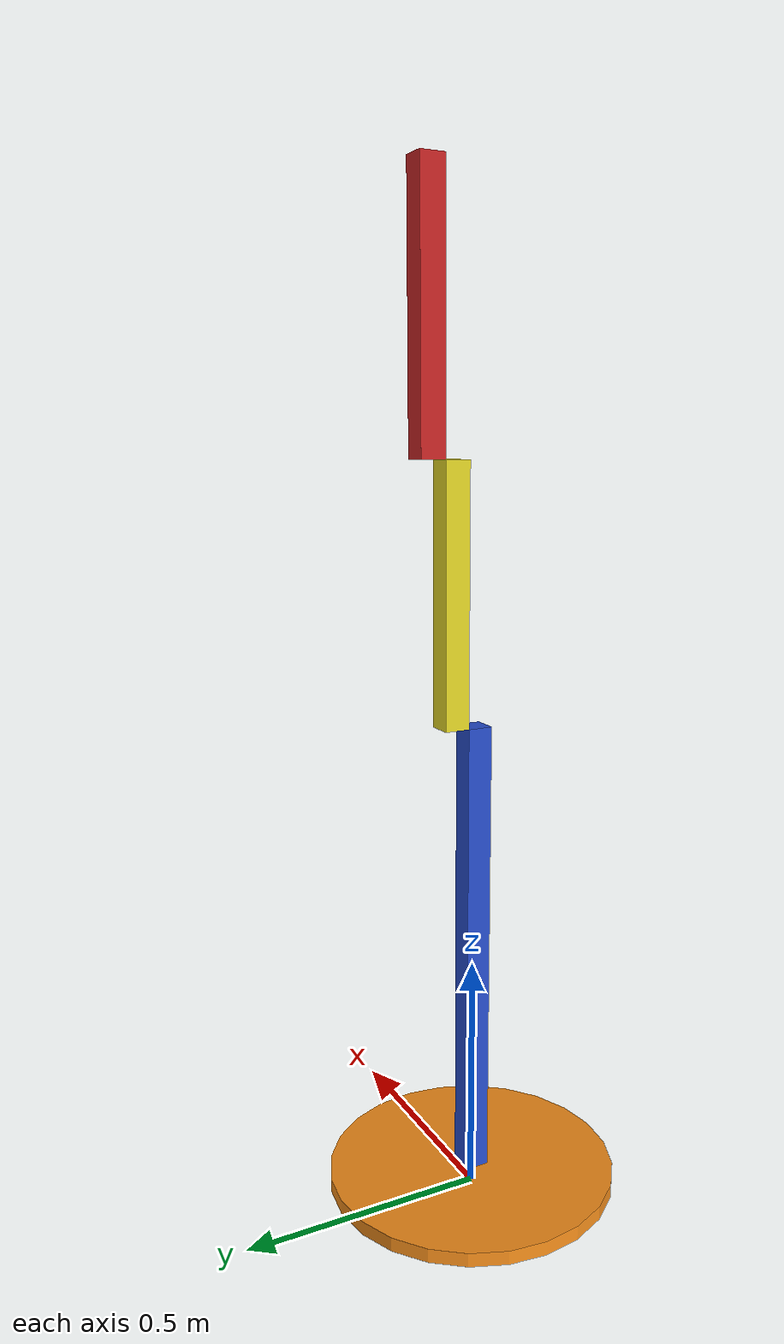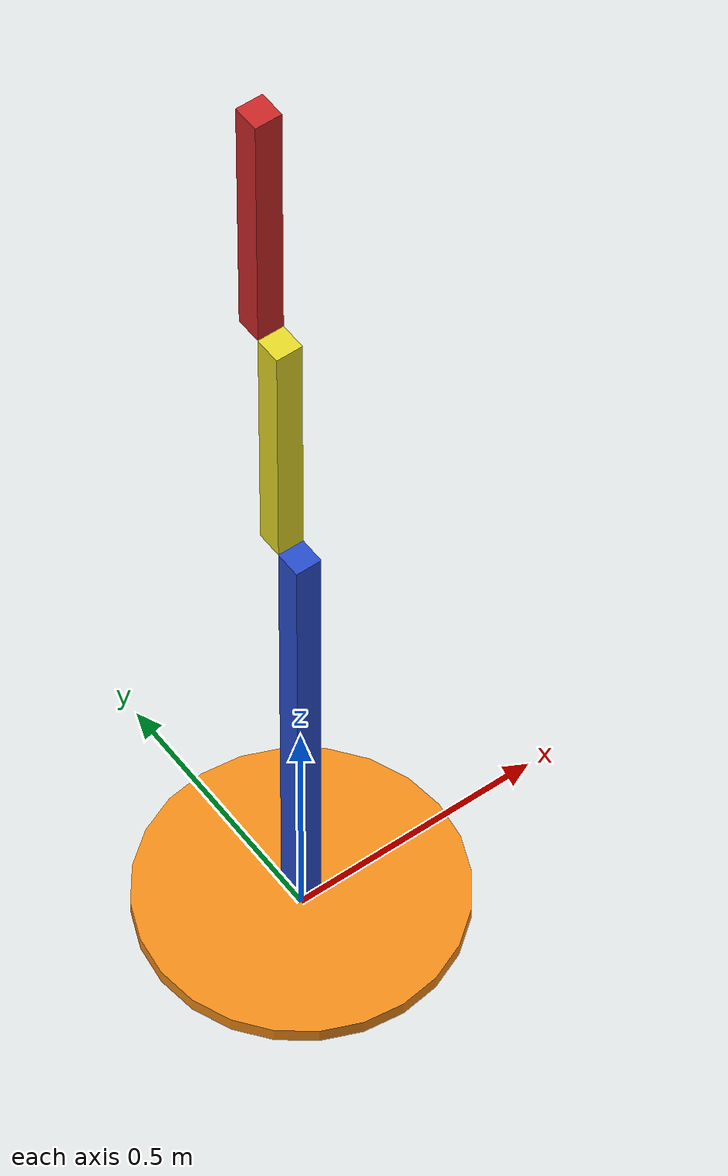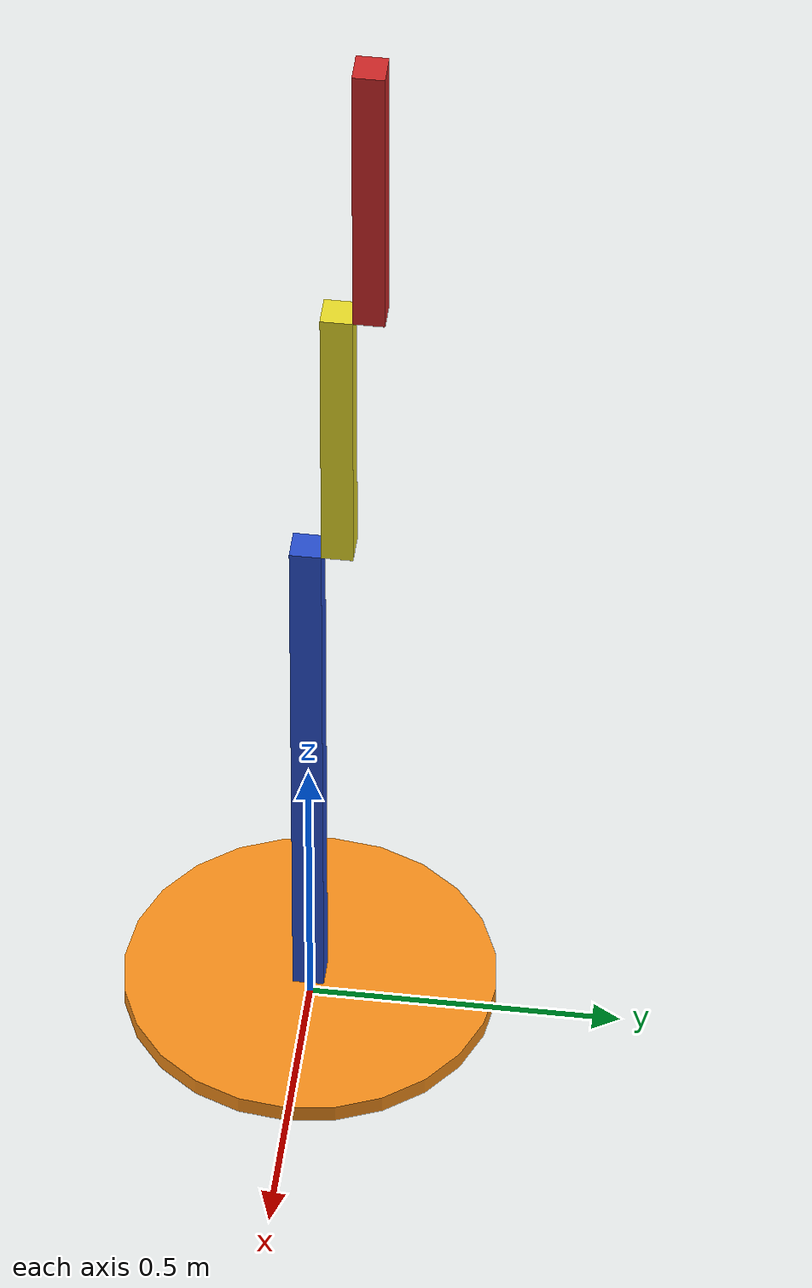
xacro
<?xml version="1.0"?>
<robot name="robotic_arm" xmlns:xacro="http://www.ros.org/wiki/xacro" >

    <xacro:property name="base_width" value="0.05" />
    <xacro:property name="base_length" value="0.05" />
    <xacro:property name="base_heigth" value="1.0" />

    <xacro:property name="cylinder_radius" value="0.3" />
    <xacro:property name="cylinder_length" value="0.03" />

    <xacro:property name="axle_offset" value="0.5" /> <!-- Space between joint and end of beam -->

    <link name = "base_footprint"/>

    <link name="base_link">
        <visual>
            <origin xyz="0 0 0" rpy="0 0 0"/>
            <geometry>
                <box size = "${base_width} ${base_length} ${base_heigth}" />
            </geometry>
            <material name = "navy_blue" />
        </visual>
        <collision>
            <origin xyz = "0 0 0" rpy = "0 0 0" />
            <geometry>
                <box size = "${base_width} ${base_length} ${base_heigth}" />
            </geometry>
        </collision>
        <xacro:box_inertial m = "5.0" l = "${2*base_length}"
                                      w = "${2*base_width}"
                                      h = "${2*base_heigth}"
                                      xyz = "0 0 0"
                                      rpy = "0 0 0" />
    </link>

    <joint name="base_footprint_to_base_joint" type="fixed">
        <parent link="base_footprint"/>
        <child link="base_link"/>
        <origin xyz="0 0 ${base_heigth/2}" />
    </joint>

    <link name="platform">
        <visual>
            <origin xyz="0 0 0" rpy="0 0 0"/>
            <geometry>
                <cylinder radius = "${cylinder_radius}" length = "${cylinder_length}" />
            </geometry>
            <material name = "orange" />
        </visual>
        <collision>
             <origin xyz="0 0 0" rpy="0 0 0"/>
            <geometry>
                <cylinder radius = "${cylinder_radius}" length = "${cylinder_length}"/>
            </geometry>
        </collision>
        <xacro:cylinder_inertial m = "5.0" l = "${cylinder_length}"
                                      r = "${cylinder_radius}"
                                      xyz = "0 0 0"
                                      rpy = "0 0 0" />
    </link>

    <joint name="platform_to_base_joint" type="fixed">
        <parent link="base_footprint"/>
        <child link="platform"/>
        <origin xyz="0 0 ${cylinder_length}" />
    </joint>

    <link name="mid_link">
        <visual>
            <origin xyz="0 0 ${base_heigth/4}" rpy= "0 0 0"/>
            <geometry>
                <box size = "${base_width} ${base_length} ${base_heigth/2}" />
            </geometry>
            <material name = "yellow" />
        </visual>
        <collision>
            <origin xyz = "0 0 ${base_heigth/4}" rpy = "0 0 0" />
            <geometry>
                <box size = "${base_width} ${base_length} ${base_heigth/2}" />
            </geometry>
        </collision>
        <xacro:box_inertial m = "2.0" l = "${base_length}"
                                      w = "${base_width}"
                                      h = "${base_heigth/2}"
                                      xyz = "0 0 0"
                                      rpy = "0 0 ${base_heigth/4}" />
    </link>

    <joint name="base_to_mid_joint" type="revolute">
        <parent link="base_link"/>
        <child link="mid_link"/>
        <origin xyz="0 ${base_width} ${base_heigth - axle_offset}" rpy="0 0 0"/>
        <axis xyz="0 1 0"/>
        <limit effort="100.0" velocity="0.5" lower="-3.14" upper="3.14" />
  </joint>

    <link name="top_link">
        <visual>
            <origin xyz="0 0 ${base_heigth/4}" rpy= "0 0 0"/>
            <geometry>
                <box size = "${base_width} ${base_length} ${base_heigth/2}" />
            </geometry>
            <material name = "red" />
        </visual>
        <collision>
            <origin xyz = "0 0 ${base_heigth/4}" rpy = "0 0 0" />
            <geometry>
                <box size = "${base_width} ${base_length} ${base_heigth/2}" />
            </geometry>
        </collision>
        <xacro:box_inertial m = "2.0" l = "${base_length}"
                                      w = "${base_width}"
                                      h = "${base_heigth/2}"
                                      xyz = "0 0 0"
                                      rpy = "0 0 ${base_heigth/4}" />
    </link>

    <joint name="mid_to_top_joint" type="revolute">
        <parent link="mid_link"/>
        <child link="top_link"/>
        <origin xyz="0 ${base_width} ${base_heigth - axle_offset}" rpy="0 0 0"/>
        <axis xyz="0 1 0"/>
        <limit effort="100.0" velocity="0.5" lower="-3.14" upper="3.14" />
  </joint>

</robot>
